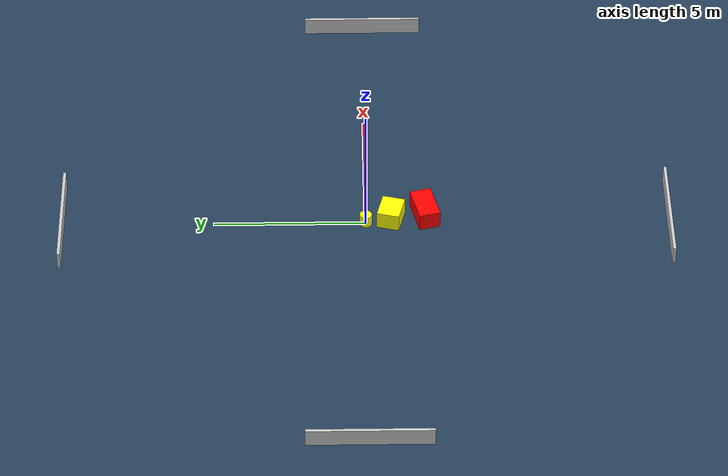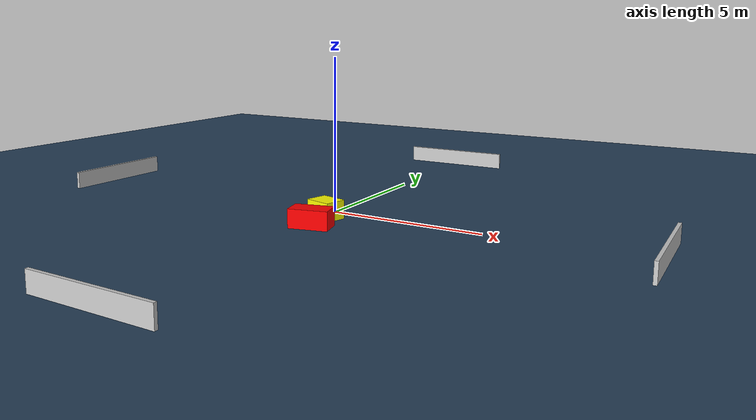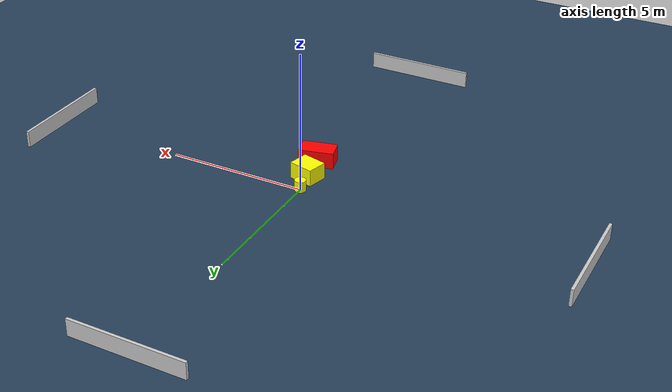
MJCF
<?xml version="1.0" ?>
<mujoco model="generated_environment">
  <option timestep="0.01" integrator="RK4" cone="elliptic"/>
  <default>
    <geom density="1"/>
  </default>
  <asset>
    <texture builtin="gradient" height="3072" name="skybox" rgb1="0.3 0.5 0.7" rgb2="0 0 0" type="skybox" width="512"/>
    <texture builtin="checker" height="300" name="groundplane" rgb1="0.2 0.3 0.4" rgb2="0.1 0.2 0.3" type="2d" width="300"/>
    <material name="groundplane" reflectance="0.2" texrepeat="5 5" texture="groundplane"/>
  </asset>
  <worldbody>
    <light dir="0 0 -1" directional="true" pos="0 0 1.5"/>
    <geom condim="3" friction="0.5 0.005 0.001" material="groundplane" name="floor" pos="0 0 0" size="0 0 0.05" type="plane"/>
    <body name="walls">
      <geom name="wall_1" condim="4" pos="-10.0 0.0 0.3" rgba="0.800000011920929 0.800000011920929 0.800000011920929 1.0" size="0.05 2.0 0.3" type="box"/>
      <geom name="wall_2" condim="4" pos="10.0 0.0 0.3" rgba="0.800000011920929 0.800000011920929 0.800000011920929 1.0" size="0.05 2.0 0.3" type="box"/>
      <geom name="wall_3" condim="4" pos="0.0 -10.0 0.3" rgba="0.800000011920929 0.800000011920929 0.800000011920929 1.0" size="2.0 0.05 0.3" type="box"/>
      <geom name="wall_4" condim="4" pos="0.0 10.0 0.3" rgba="0.800000011920929 0.800000011920929 0.800000011920929 1.0" size="2.0 0.05 0.3" type="box"/>
    </body>
    <body name="robot">
      <joint name="joint_x" type="slide" pos="0 0 0" axis="1 0 0"/>
      <joint name="joint_y" type="slide" pos="0 0 0" axis="0 1 0"/>
      <geom name="robot" type="cylinder" pos="0.0 0.0 0.2" size="0.2 0.2 0.0" mass="5.0" friction="1.0 0.005 0.0001" condim="4" rgba="1.0 1.0 0.0 1.0"/>
    </body>
    <body name="obstacle_1_movable">
      <geom name="obstacle_1_movable" condim="4" pos="0.16359739774645363 -0.8267894996207312 0.3" euler="0 0 165.76339472087398" friction="0.0 0.005 0.001" rgba="1.0 1.0 0.0 1.0" size="0.446980590172889 0.37226111451248634 0.3" type="box" mass="0.1"/>
      <joint type="free"/>
    </body>
    <body name="obstacle_2_static">
      <geom name="obstacle_2_static" condim="4" pos="0.35213616000376785 -1.9559351263938707 0.3" euler="0 0 13.802488124144357" friction="0.0 0.005 0.001" rgba="1.0 0.0 0.0 1.0" size="0.6246810301850094 0.3517723520333294 0.3" type="box"/>
    </body>
  </worldbody>
  <actuator>
    <motor name="actuator_x" joint="joint_x" gear="1" ctrlrange="-1 1"/>
    <motor name="actuator_y" joint="joint_y" gear="1" ctrlrange="-1 1"/>
  </actuator>
</mujoco>
